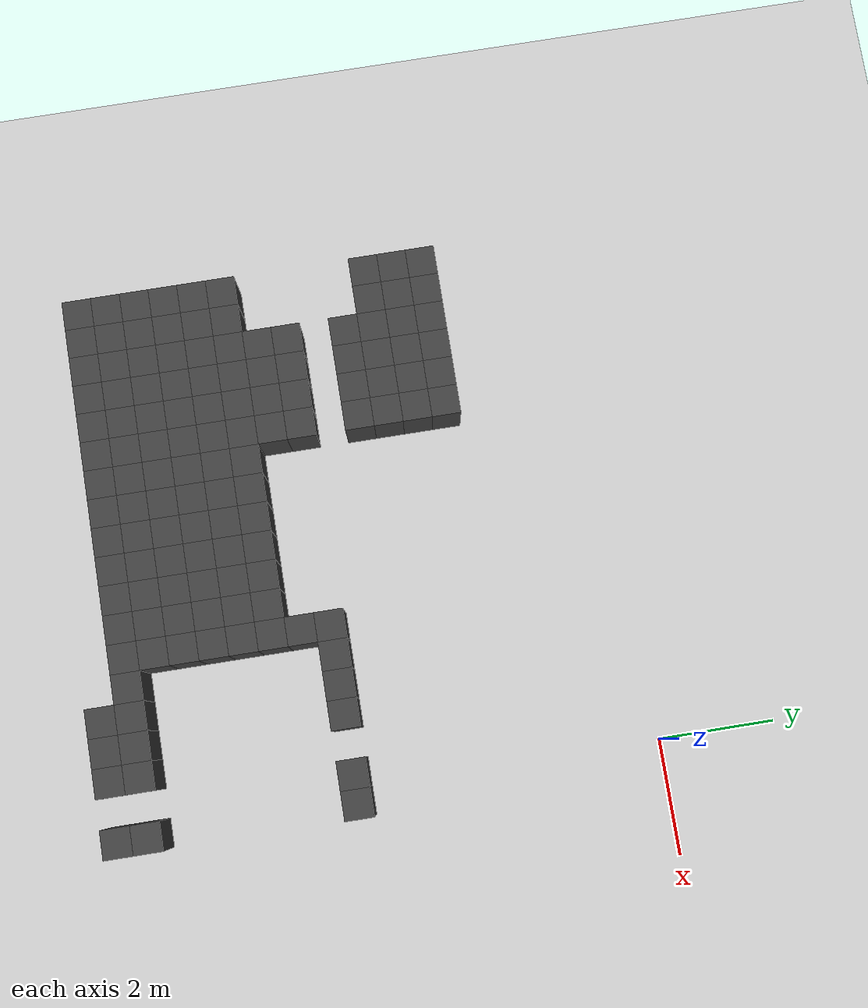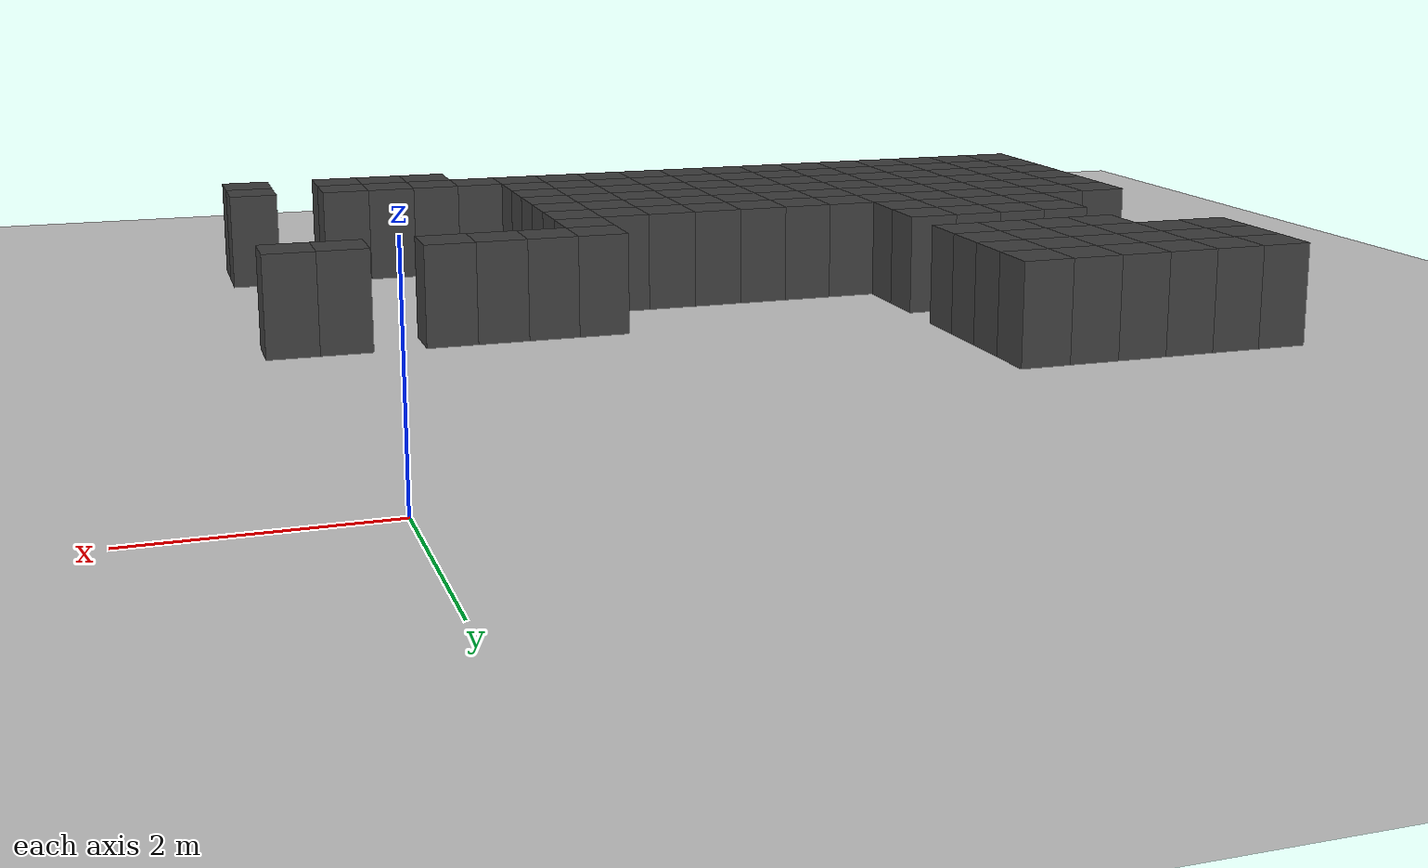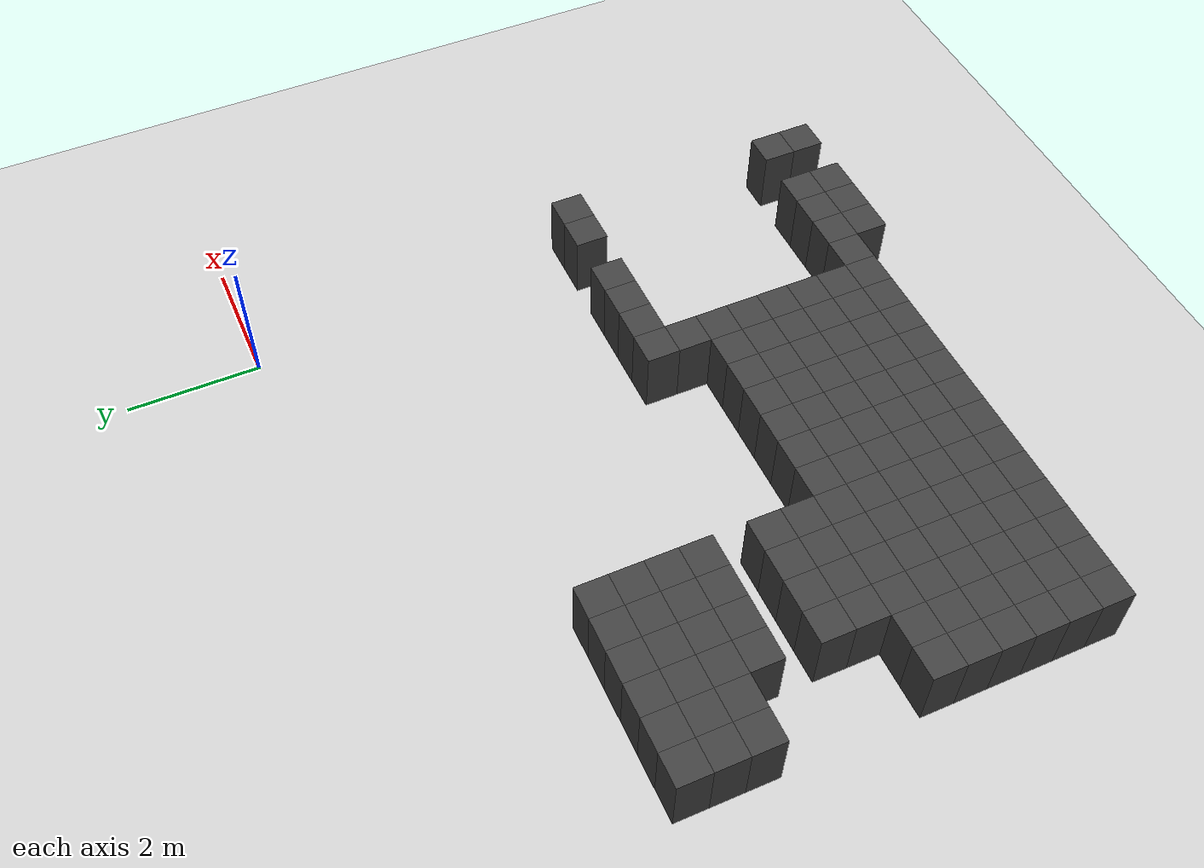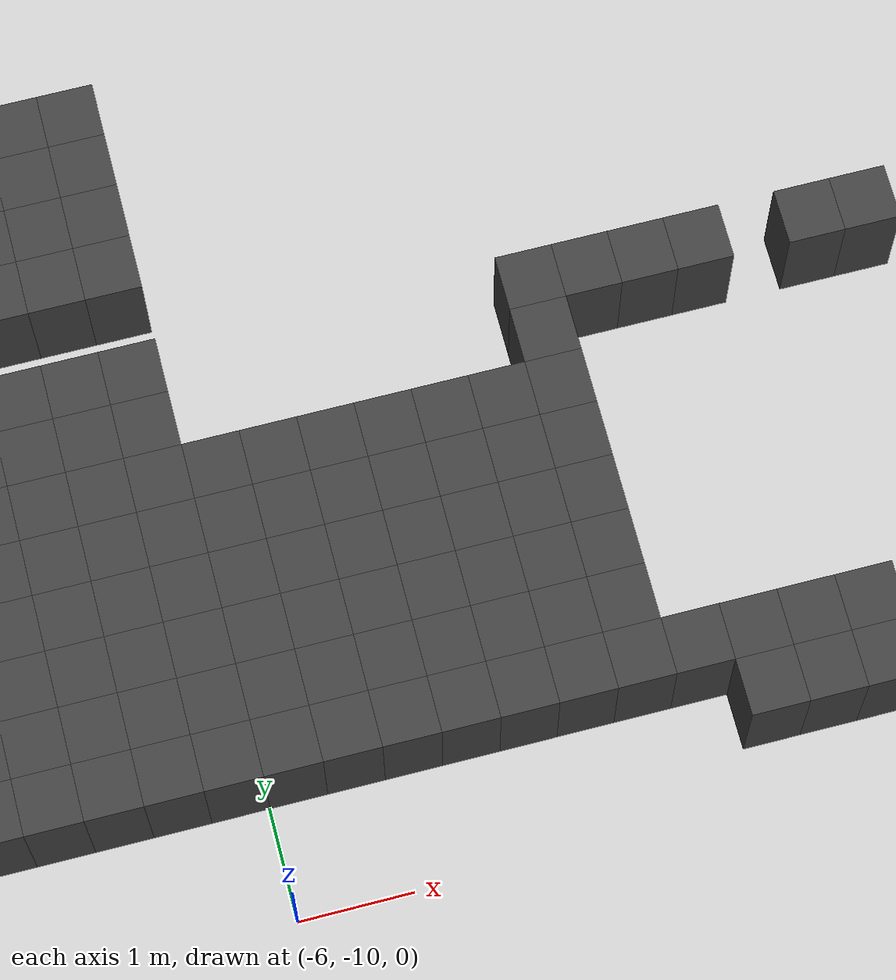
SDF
<sdf version="1.7">
 <world name="map_14802">
  <model name="ground_plane">
   <static>true</static>
   <link name="link">
    <collision name="collision">
     <geometry><plane><normal>0 0 1</normal><size>200 200</size></plane></geometry>
    </collision>
    <visual name="visual">
     <geometry><plane><normal>0 0 1</normal><size>200 200</size></plane></geometry>
     <material><ambient>0.8 0.8 0.8 1</ambient><diffuse>0.8 0.8 0.8 1</diffuse></material>
    </visual>
   </link>
  </model>
  <model name="maze_environment">
   <static>true</static>
   <link name="wall_1045">
    <pose>-8.750 -2.750 0.500 0 0 0</pose>
    <collision name="col"><geometry><box><size>0.5 0.5 1.0</size></box></geometry></collision>
    <visual name="vis">
     <geometry><box><size>0.5 0.5 1.0</size></box></geometry>
     <material><ambient>0.15 0.15 0.15 1</ambient><diffuse>0.25 0.25 0.25 1</diffuse></material>
    </visual>
   </link>
   <link name="wall_1046">
    <pose>-8.250 -2.750 0.500 0 0 0</pose>
    <collision name="col"><geometry><box><size>0.5 0.5 1.0</size></box></geometry></collision>
    <visual name="vis">
     <geometry><box><size>0.5 0.5 1.0</size></box></geometry>
     <material><ambient>0.15 0.15 0.15 1</ambient><diffuse>0.25 0.25 0.25 1</diffuse></material>
    </visual>
   </link>
   <link name="wall_1047">
    <pose>-7.750 -2.750 0.500 0 0 0</pose>
    <collision name="col"><geometry><box><size>0.5 0.5 1.0</size></box></geometry></collision>
    <visual name="vis">
     <geometry><box><size>0.5 0.5 1.0</size></box></geometry>
     <material><ambient>0.15 0.15 0.15 1</ambient><diffuse>0.25 0.25 0.25 1</diffuse></material>
    </visual>
   </link>
   <link name="wall_1048">
    <pose>-7.250 -2.750 0.500 0 0 0</pose>
    <collision name="col"><geometry><box><size>0.5 0.5 1.0</size></box></geometry></collision>
    <visual name="vis">
     <geometry><box><size>0.5 0.5 1.0</size></box></geometry>
     <material><ambient>0.15 0.15 0.15 1</ambient><diffuse>0.25 0.25 0.25 1</diffuse></material>
    </visual>
   </link>
   <link name="wall_1049">
    <pose>-6.750 -2.750 0.500 0 0 0</pose>
    <collision name="col"><geometry><box><size>0.5 0.5 1.0</size></box></geometry></collision>
    <visual name="vis">
     <geometry><box><size>0.5 0.5 1.0</size></box></geometry>
     <material><ambient>0.15 0.15 0.15 1</ambient><diffuse>0.25 0.25 0.25 1</diffuse></material>
    </visual>
   </link>
   <link name="wall_1050">
    <pose>-6.250 -2.750 0.500 0 0 0</pose>
    <collision name="col"><geometry><box><size>0.5 0.5 1.0</size></box></geometry></collision>
    <visual name="vis">
     <geometry><box><size>0.5 0.5 1.0</size></box></geometry>
     <material><ambient>0.15 0.15 0.15 1</ambient><diffuse>0.25 0.25 0.25 1</diffuse></material>
    </visual>
   </link>
   <link name="wall_1073">
    <pose>-8.750 -3.250 0.500 0 0 0</pose>
    <collision name="col"><geometry><box><size>0.5 0.5 1.0</size></box></geometry></collision>
    <visual name="vis">
     <geometry><box><size>0.5 0.5 1.0</size></box></geometry>
     <material><ambient>0.15 0.15 0.15 1</ambient><diffuse>0.25 0.25 0.25 1</diffuse></material>
    </visual>
   </link>
   <link name="wall_1074">
    <pose>-8.250 -3.250 0.500 0 0 0</pose>
    <collision name="col"><geometry><box><size>0.5 0.5 1.0</size></box></geometry></collision>
    <visual name="vis">
     <geometry><box><size>0.5 0.5 1.0</size></box></geometry>
     <material><ambient>0.15 0.15 0.15 1</ambient><diffuse>0.25 0.25 0.25 1</diffuse></material>
    </visual>
   </link>
   <link name="wall_1075">
    <pose>-7.750 -3.250 0.500 0 0 0</pose>
    <collision name="col"><geometry><box><size>0.5 0.5 1.0</size></box></geometry></collision>
    <visual name="vis">
     <geometry><box><size>0.5 0.5 1.0</size></box></geometry>
     <material><ambient>0.15 0.15 0.15 1</ambient><diffuse>0.25 0.25 0.25 1</diffuse></material>
    </visual>
   </link>
   <link name="wall_1076">
    <pose>-7.250 -3.250 0.500 0 0 0</pose>
    <collision name="col"><geometry><box><size>0.5 0.5 1.0</size></box></geometry></collision>
    <visual name="vis">
     <geometry><box><size>0.5 0.5 1.0</size></box></geometry>
     <material><ambient>0.15 0.15 0.15 1</ambient><diffuse>0.25 0.25 0.25 1</diffuse></material>
    </visual>
   </link>
   <link name="wall_1077">
    <pose>-6.750 -3.250 0.500 0 0 0</pose>
    <collision name="col"><geometry><box><size>0.5 0.5 1.0</size></box></geometry></collision>
    <visual name="vis">
     <geometry><box><size>0.5 0.5 1.0</size></box></geometry>
     <material><ambient>0.15 0.15 0.15 1</ambient><diffuse>0.25 0.25 0.25 1</diffuse></material>
    </visual>
   </link>
   <link name="wall_1078">
    <pose>-6.250 -3.250 0.500 0 0 0</pose>
    <collision name="col"><geometry><box><size>0.5 0.5 1.0</size></box></geometry></collision>
    <visual name="vis">
     <geometry><box><size>0.5 0.5 1.0</size></box></geometry>
     <material><ambient>0.15 0.15 0.15 1</ambient><diffuse>0.25 0.25 0.25 1</diffuse></material>
    </visual>
   </link>
   <link name="wall_1097">
    <pose>-8.750 -3.750 0.500 0 0 0</pose>
    <collision name="col"><geometry><box><size>0.5 0.5 1.0</size></box></geometry></collision>
    <visual name="vis">
     <geometry><box><size>0.5 0.5 1.0</size></box></geometry>
     <material><ambient>0.15 0.15 0.15 1</ambient><diffuse>0.25 0.25 0.25 1</diffuse></material>
    </visual>
   </link>
   <link name="wall_1098">
    <pose>-8.250 -3.750 0.500 0 0 0</pose>
    <collision name="col"><geometry><box><size>0.5 0.5 1.0</size></box></geometry></collision>
    <visual name="vis">
     <geometry><box><size>0.5 0.5 1.0</size></box></geometry>
     <material><ambient>0.15 0.15 0.15 1</ambient><diffuse>0.25 0.25 0.25 1</diffuse></material>
    </visual>
   </link>
   <link name="wall_1099">
    <pose>-7.750 -3.750 0.500 0 0 0</pose>
    <collision name="col"><geometry><box><size>0.5 0.5 1.0</size></box></geometry></collision>
    <visual name="vis">
     <geometry><box><size>0.5 0.5 1.0</size></box></geometry>
     <material><ambient>0.15 0.15 0.15 1</ambient><diffuse>0.25 0.25 0.25 1</diffuse></material>
    </visual>
   </link>
   <link name="wall_1100">
    <pose>-7.250 -3.750 0.500 0 0 0</pose>
    <collision name="col"><geometry><box><size>0.5 0.5 1.0</size></box></geometry></collision>
    <visual name="vis">
     <geometry><box><size>0.5 0.5 1.0</size></box></geometry>
     <material><ambient>0.15 0.15 0.15 1</ambient><diffuse>0.25 0.25 0.25 1</diffuse></material>
    </visual>
   </link>
   <link name="wall_1101">
    <pose>-6.750 -3.750 0.500 0 0 0</pose>
    <collision name="col"><geometry><box><size>0.5 0.5 1.0</size></box></geometry></collision>
    <visual name="vis">
     <geometry><box><size>0.5 0.5 1.0</size></box></geometry>
     <material><ambient>0.15 0.15 0.15 1</ambient><diffuse>0.25 0.25 0.25 1</diffuse></material>
    </visual>
   </link>
   <link name="wall_1102">
    <pose>-6.250 -3.750 0.500 0 0 0</pose>
    <collision name="col"><geometry><box><size>0.5 0.5 1.0</size></box></geometry></collision>
    <visual name="vis">
     <geometry><box><size>0.5 0.5 1.0</size></box></geometry>
     <material><ambient>0.15 0.15 0.15 1</ambient><diffuse>0.25 0.25 0.25 1</diffuse></material>
    </visual>
   </link>
   <link name="wall_1123">
    <pose>-7.750 -4.250 0.500 0 0 0</pose>
    <collision name="col"><geometry><box><size>0.5 0.5 1.0</size></box></geometry></collision>
    <visual name="vis">
     <geometry><box><size>0.5 0.5 1.0</size></box></geometry>
     <material><ambient>0.15 0.15 0.15 1</ambient><diffuse>0.25 0.25 0.25 1</diffuse></material>
    </visual>
   </link>
   <link name="wall_1124">
    <pose>-7.250 -4.250 0.500 0 0 0</pose>
    <collision name="col"><geometry><box><size>0.5 0.5 1.0</size></box></geometry></collision>
    <visual name="vis">
     <geometry><box><size>0.5 0.5 1.0</size></box></geometry>
     <material><ambient>0.15 0.15 0.15 1</ambient><diffuse>0.25 0.25 0.25 1</diffuse></material>
    </visual>
   </link>
   <link name="wall_1125">
    <pose>-6.750 -4.250 0.500 0 0 0</pose>
    <collision name="col"><geometry><box><size>0.5 0.5 1.0</size></box></geometry></collision>
    <visual name="vis">
     <geometry><box><size>0.5 0.5 1.0</size></box></geometry>
     <material><ambient>0.15 0.15 0.15 1</ambient><diffuse>0.25 0.25 0.25 1</diffuse></material>
    </visual>
   </link>
   <link name="wall_1126">
    <pose>-6.250 -4.250 0.500 0 0 0</pose>
    <collision name="col"><geometry><box><size>0.5 0.5 1.0</size></box></geometry></collision>
    <visual name="vis">
     <geometry><box><size>0.5 0.5 1.0</size></box></geometry>
     <material><ambient>0.15 0.15 0.15 1</ambient><diffuse>0.25 0.25 0.25 1</diffuse></material>
    </visual>
   </link>
   <link name="wall_1161">
    <pose>-7.750 -5.250 0.500 0 0 0</pose>
    <collision name="col"><geometry><box><size>0.5 0.5 1.0</size></box></geometry></collision>
    <visual name="vis">
     <geometry><box><size>0.5 0.5 1.0</size></box></geometry>
     <material><ambient>0.15 0.15 0.15 1</ambient><diffuse>0.25 0.25 0.25 1</diffuse></material>
    </visual>
   </link>
   <link name="wall_1162">
    <pose>-7.250 -5.250 0.500 0 0 0</pose>
    <collision name="col"><geometry><box><size>0.5 0.5 1.0</size></box></geometry></collision>
    <visual name="vis">
     <geometry><box><size>0.5 0.5 1.0</size></box></geometry>
     <material><ambient>0.15 0.15 0.15 1</ambient><diffuse>0.25 0.25 0.25 1</diffuse></material>
    </visual>
   </link>
   <link name="wall_1163">
    <pose>-6.750 -5.250 0.500 0 0 0</pose>
    <collision name="col"><geometry><box><size>0.5 0.5 1.0</size></box></geometry></collision>
    <visual name="vis">
     <geometry><box><size>0.5 0.5 1.0</size></box></geometry>
     <material><ambient>0.15 0.15 0.15 1</ambient><diffuse>0.25 0.25 0.25 1</diffuse></material>
    </visual>
   </link>
   <link name="wall_1164">
    <pose>-6.250 -5.250 0.500 0 0 0</pose>
    <collision name="col"><geometry><box><size>0.5 0.5 1.0</size></box></geometry></collision>
    <visual name="vis">
     <geometry><box><size>0.5 0.5 1.0</size></box></geometry>
     <material><ambient>0.15 0.15 0.15 1</ambient><diffuse>0.25 0.25 0.25 1</diffuse></material>
    </visual>
   </link>
   <link name="wall_1165">
    <pose>-2.750 -5.250 0.500 0 0 0</pose>
    <collision name="col"><geometry><box><size>0.5 0.5 1.0</size></box></geometry></collision>
    <visual name="vis">
     <geometry><box><size>0.5 0.5 1.0</size></box></geometry>
     <material><ambient>0.15 0.15 0.15 1</ambient><diffuse>0.25 0.25 0.25 1</diffuse></material>
    </visual>
   </link>
   <link name="wall_1166">
    <pose>-2.250 -5.250 0.500 0 0 0</pose>
    <collision name="col"><geometry><box><size>0.5 0.5 1.0</size></box></geometry></collision>
    <visual name="vis">
     <geometry><box><size>0.5 0.5 1.0</size></box></geometry>
     <material><ambient>0.15 0.15 0.15 1</ambient><diffuse>0.25 0.25 0.25 1</diffuse></material>
    </visual>
   </link>
   <link name="wall_1167">
    <pose>-1.750 -5.250 0.500 0 0 0</pose>
    <collision name="col"><geometry><box><size>0.5 0.5 1.0</size></box></geometry></collision>
    <visual name="vis">
     <geometry><box><size>0.5 0.5 1.0</size></box></geometry>
     <material><ambient>0.15 0.15 0.15 1</ambient><diffuse>0.25 0.25 0.25 1</diffuse></material>
    </visual>
   </link>
   <link name="wall_1168">
    <pose>-1.250 -5.250 0.500 0 0 0</pose>
    <collision name="col"><geometry><box><size>0.5 0.5 1.0</size></box></geometry></collision>
    <visual name="vis">
     <geometry><box><size>0.5 0.5 1.0</size></box></geometry>
     <material><ambient>0.15 0.15 0.15 1</ambient><diffuse>0.25 0.25 0.25 1</diffuse></material>
    </visual>
   </link>
   <link name="wall_1169">
    <pose>-0.250 -5.250 0.500 0 0 0</pose>
    <collision name="col"><geometry><box><size>0.5 0.5 1.0</size></box></geometry></collision>
    <visual name="vis">
     <geometry><box><size>0.5 0.5 1.0</size></box></geometry>
     <material><ambient>0.15 0.15 0.15 1</ambient><diffuse>0.25 0.25 0.25 1</diffuse></material>
    </visual>
   </link>
   <link name="wall_1170">
    <pose>0.250 -5.250 0.500 0 0 0</pose>
    <collision name="col"><geometry><box><size>0.5 0.5 1.0</size></box></geometry></collision>
    <visual name="vis">
     <geometry><box><size>0.5 0.5 1.0</size></box></geometry>
     <material><ambient>0.15 0.15 0.15 1</ambient><diffuse>0.25 0.25 0.25 1</diffuse></material>
    </visual>
   </link>
   <link name="wall_1189">
    <pose>-7.750 -5.750 0.500 0 0 0</pose>
    <collision name="col"><geometry><box><size>0.5 0.5 1.0</size></box></geometry></collision>
    <visual name="vis">
     <geometry><box><size>0.5 0.5 1.0</size></box></geometry>
     <material><ambient>0.15 0.15 0.15 1</ambient><diffuse>0.25 0.25 0.25 1</diffuse></material>
    </visual>
   </link>
   <link name="wall_1190">
    <pose>-7.250 -5.750 0.500 0 0 0</pose>
    <collision name="col"><geometry><box><size>0.5 0.5 1.0</size></box></geometry></collision>
    <visual name="vis">
     <geometry><box><size>0.5 0.5 1.0</size></box></geometry>
     <material><ambient>0.15 0.15 0.15 1</ambient><diffuse>0.25 0.25 0.25 1</diffuse></material>
    </visual>
   </link>
   <link name="wall_1191">
    <pose>-6.750 -5.750 0.500 0 0 0</pose>
    <collision name="col"><geometry><box><size>0.5 0.5 1.0</size></box></geometry></collision>
    <visual name="vis">
     <geometry><box><size>0.5 0.5 1.0</size></box></geometry>
     <material><ambient>0.15 0.15 0.15 1</ambient><diffuse>0.25 0.25 0.25 1</diffuse></material>
    </visual>
   </link>
   <link name="wall_1192">
    <pose>-6.250 -5.750 0.500 0 0 0</pose>
    <collision name="col"><geometry><box><size>0.5 0.5 1.0</size></box></geometry></collision>
    <visual name="vis">
     <geometry><box><size>0.5 0.5 1.0</size></box></geometry>
     <material><ambient>0.15 0.15 0.15 1</ambient><diffuse>0.25 0.25 0.25 1</diffuse></material>
    </visual>
   </link>
   <link name="wall_1193">
    <pose>-2.750 -5.750 0.500 0 0 0</pose>
    <collision name="col"><geometry><box><size>0.5 0.5 1.0</size></box></geometry></collision>
    <visual name="vis">
     <geometry><box><size>0.5 0.5 1.0</size></box></geometry>
     <material><ambient>0.15 0.15 0.15 1</ambient><diffuse>0.25 0.25 0.25 1</diffuse></material>
    </visual>
   </link>
   <link name="wall_1214">
    <pose>-8.750 -6.250 0.500 0 0 0</pose>
    <collision name="col"><geometry><box><size>0.5 0.5 1.0</size></box></geometry></collision>
    <visual name="vis">
     <geometry><box><size>0.5 0.5 1.0</size></box></geometry>
     <material><ambient>0.15 0.15 0.15 1</ambient><diffuse>0.25 0.25 0.25 1</diffuse></material>
    </visual>
   </link>
   <link name="wall_1215">
    <pose>-8.250 -6.250 0.500 0 0 0</pose>
    <collision name="col"><geometry><box><size>0.5 0.5 1.0</size></box></geometry></collision>
    <visual name="vis">
     <geometry><box><size>0.5 0.5 1.0</size></box></geometry>
     <material><ambient>0.15 0.15 0.15 1</ambient><diffuse>0.25 0.25 0.25 1</diffuse></material>
    </visual>
   </link>
   <link name="wall_1216">
    <pose>-7.750 -6.250 0.500 0 0 0</pose>
    <collision name="col"><geometry><box><size>0.5 0.5 1.0</size></box></geometry></collision>
    <visual name="vis">
     <geometry><box><size>0.5 0.5 1.0</size></box></geometry>
     <material><ambient>0.15 0.15 0.15 1</ambient><diffuse>0.25 0.25 0.25 1</diffuse></material>
    </visual>
   </link>
   <link name="wall_1217">
    <pose>-7.250 -6.250 0.500 0 0 0</pose>
    <collision name="col"><geometry><box><size>0.5 0.5 1.0</size></box></geometry></collision>
    <visual name="vis">
     <geometry><box><size>0.5 0.5 1.0</size></box></geometry>
     <material><ambient>0.15 0.15 0.15 1</ambient><diffuse>0.25 0.25 0.25 1</diffuse></material>
    </visual>
   </link>
   <link name="wall_1218">
    <pose>-6.750 -6.250 0.500 0 0 0</pose>
    <collision name="col"><geometry><box><size>0.5 0.5 1.0</size></box></geometry></collision>
    <visual name="vis">
     <geometry><box><size>0.5 0.5 1.0</size></box></geometry>
     <material><ambient>0.15 0.15 0.15 1</ambient><diffuse>0.25 0.25 0.25 1</diffuse></material>
    </visual>
   </link>
   <link name="wall_1219">
    <pose>-6.250 -6.250 0.500 0 0 0</pose>
    <collision name="col"><geometry><box><size>0.5 0.5 1.0</size></box></geometry></collision>
    <visual name="vis">
     <geometry><box><size>0.5 0.5 1.0</size></box></geometry>
     <material><ambient>0.15 0.15 0.15 1</ambient><diffuse>0.25 0.25 0.25 1</diffuse></material>
    </visual>
   </link>
   <link name="wall_1220">
    <pose>-5.750 -6.250 0.500 0 0 0</pose>
    <collision name="col"><geometry><box><size>0.5 0.5 1.0</size></box></geometry></collision>
    <visual name="vis">
     <geometry><box><size>0.5 0.5 1.0</size></box></geometry>
     <material><ambient>0.15 0.15 0.15 1</ambient><diffuse>0.25 0.25 0.25 1</diffuse></material>
    </visual>
   </link>
   <link name="wall_1221">
    <pose>-5.250 -6.250 0.500 0 0 0</pose>
    <collision name="col"><geometry><box><size>0.5 0.5 1.0</size></box></geometry></collision>
    <visual name="vis">
     <geometry><box><size>0.5 0.5 1.0</size></box></geometry>
     <material><ambient>0.15 0.15 0.15 1</ambient><diffuse>0.25 0.25 0.25 1</diffuse></material>
    </visual>
   </link>
   <link name="wall_1222">
    <pose>-4.750 -6.250 0.500 0 0 0</pose>
    <collision name="col"><geometry><box><size>0.5 0.5 1.0</size></box></geometry></collision>
    <visual name="vis">
     <geometry><box><size>0.5 0.5 1.0</size></box></geometry>
     <material><ambient>0.15 0.15 0.15 1</ambient><diffuse>0.25 0.25 0.25 1</diffuse></material>
    </visual>
   </link>
   <link name="wall_1223">
    <pose>-4.250 -6.250 0.500 0 0 0</pose>
    <collision name="col"><geometry><box><size>0.5 0.5 1.0</size></box></geometry></collision>
    <visual name="vis">
     <geometry><box><size>0.5 0.5 1.0</size></box></geometry>
     <material><ambient>0.15 0.15 0.15 1</ambient><diffuse>0.25 0.25 0.25 1</diffuse></material>
    </visual>
   </link>
   <link name="wall_1224">
    <pose>-3.750 -6.250 0.500 0 0 0</pose>
    <collision name="col"><geometry><box><size>0.5 0.5 1.0</size></box></geometry></collision>
    <visual name="vis">
     <geometry><box><size>0.5 0.5 1.0</size></box></geometry>
     <material><ambient>0.15 0.15 0.15 1</ambient><diffuse>0.25 0.25 0.25 1</diffuse></material>
    </visual>
   </link>
   <link name="wall_1225">
    <pose>-3.250 -6.250 0.500 0 0 0</pose>
    <collision name="col"><geometry><box><size>0.5 0.5 1.0</size></box></geometry></collision>
    <visual name="vis">
     <geometry><box><size>0.5 0.5 1.0</size></box></geometry>
     <material><ambient>0.15 0.15 0.15 1</ambient><diffuse>0.25 0.25 0.25 1</diffuse></material>
    </visual>
   </link>
   <link name="wall_1226">
    <pose>-2.750 -6.250 0.500 0 0 0</pose>
    <collision name="col"><geometry><box><size>0.5 0.5 1.0</size></box></geometry></collision>
    <visual name="vis">
     <geometry><box><size>0.5 0.5 1.0</size></box></geometry>
     <material><ambient>0.15 0.15 0.15 1</ambient><diffuse>0.25 0.25 0.25 1</diffuse></material>
    </visual>
   </link>
   <link name="wall_1247">
    <pose>-8.750 -6.750 0.500 0 0 0</pose>
    <collision name="col"><geometry><box><size>0.5 0.5 1.0</size></box></geometry></collision>
    <visual name="vis">
     <geometry><box><size>0.5 0.5 1.0</size></box></geometry>
     <material><ambient>0.15 0.15 0.15 1</ambient><diffuse>0.25 0.25 0.25 1</diffuse></material>
    </visual>
   </link>
   <link name="wall_1248">
    <pose>-8.250 -6.750 0.500 0 0 0</pose>
    <collision name="col"><geometry><box><size>0.5 0.5 1.0</size></box></geometry></collision>
    <visual name="vis">
     <geometry><box><size>0.5 0.5 1.0</size></box></geometry>
     <material><ambient>0.15 0.15 0.15 1</ambient><diffuse>0.25 0.25 0.25 1</diffuse></material>
    </visual>
   </link>
   <link name="wall_1249">
    <pose>-7.750 -6.750 0.500 0 0 0</pose>
    <collision name="col"><geometry><box><size>0.5 0.5 1.0</size></box></geometry></collision>
    <visual name="vis">
     <geometry><box><size>0.5 0.5 1.0</size></box></geometry>
     <material><ambient>0.15 0.15 0.15 1</ambient><diffuse>0.25 0.25 0.25 1</diffuse></material>
    </visual>
   </link>
   <link name="wall_1250">
    <pose>-7.250 -6.750 0.500 0 0 0</pose>
    <collision name="col"><geometry><box><size>0.5 0.5 1.0</size></box></geometry></collision>
    <visual name="vis">
     <geometry><box><size>0.5 0.5 1.0</size></box></geometry>
     <material><ambient>0.15 0.15 0.15 1</ambient><diffuse>0.25 0.25 0.25 1</diffuse></material>
    </visual>
   </link>
   <link name="wall_1251">
    <pose>-6.750 -6.750 0.500 0 0 0</pose>
    <collision name="col"><geometry><box><size>0.5 0.5 1.0</size></box></geometry></collision>
    <visual name="vis">
     <geometry><box><size>0.5 0.5 1.0</size></box></geometry>
     <material><ambient>0.15 0.15 0.15 1</ambient><diffuse>0.25 0.25 0.25 1</diffuse></material>
    </visual>
   </link>
   <link name="wall_1252">
    <pose>-6.250 -6.750 0.500 0 0 0</pose>
    <collision name="col"><geometry><box><size>0.5 0.5 1.0</size></box></geometry></collision>
    <visual name="vis">
     <geometry><box><size>0.5 0.5 1.0</size></box></geometry>
     <material><ambient>0.15 0.15 0.15 1</ambient><diffuse>0.25 0.25 0.25 1</diffuse></material>
    </visual>
   </link>
   <link name="wall_1253">
    <pose>-5.750 -6.750 0.500 0 0 0</pose>
    <collision name="col"><geometry><box><size>0.5 0.5 1.0</size></box></geometry></collision>
    <visual name="vis">
     <geometry><box><size>0.5 0.5 1.0</size></box></geometry>
     <material><ambient>0.15 0.15 0.15 1</ambient><diffuse>0.25 0.25 0.25 1</diffuse></material>
    </visual>
   </link>
   <link name="wall_1254">
    <pose>-5.250 -6.750 0.500 0 0 0</pose>
    <collision name="col"><geometry><box><size>0.5 0.5 1.0</size></box></geometry></collision>
    <visual name="vis">
     <geometry><box><size>0.5 0.5 1.0</size></box></geometry>
     <material><ambient>0.15 0.15 0.15 1</ambient><diffuse>0.25 0.25 0.25 1</diffuse></material>
    </visual>
   </link>
   <link name="wall_1255">
    <pose>-4.750 -6.750 0.500 0 0 0</pose>
    <collision name="col"><geometry><box><size>0.5 0.5 1.0</size></box></geometry></collision>
    <visual name="vis">
     <geometry><box><size>0.5 0.5 1.0</size></box></geometry>
     <material><ambient>0.15 0.15 0.15 1</ambient><diffuse>0.25 0.25 0.25 1</diffuse></material>
    </visual>
   </link>
   <link name="wall_1256">
    <pose>-4.250 -6.750 0.500 0 0 0</pose>
    <collision name="col"><geometry><box><size>0.5 0.5 1.0</size></box></geometry></collision>
    <visual name="vis">
     <geometry><box><size>0.5 0.5 1.0</size></box></geometry>
     <material><ambient>0.15 0.15 0.15 1</ambient><diffuse>0.25 0.25 0.25 1</diffuse></material>
    </visual>
   </link>
   <link name="wall_1257">
    <pose>-3.750 -6.750 0.500 0 0 0</pose>
    <collision name="col"><geometry><box><size>0.5 0.5 1.0</size></box></geometry></collision>
    <visual name="vis">
     <geometry><box><size>0.5 0.5 1.0</size></box></geometry>
     <material><ambient>0.15 0.15 0.15 1</ambient><diffuse>0.25 0.25 0.25 1</diffuse></material>
    </visual>
   </link>
   <link name="wall_1258">
    <pose>-3.250 -6.750 0.500 0 0 0</pose>
    <collision name="col"><geometry><box><size>0.5 0.5 1.0</size></box></geometry></collision>
    <visual name="vis">
     <geometry><box><size>0.5 0.5 1.0</size></box></geometry>
     <material><ambient>0.15 0.15 0.15 1</ambient><diffuse>0.25 0.25 0.25 1</diffuse></material>
    </visual>
   </link>
   <link name="wall_1259">
    <pose>-2.750 -6.750 0.500 0 0 0</pose>
    <collision name="col"><geometry><box><size>0.5 0.5 1.0</size></box></geometry></collision>
    <visual name="vis">
     <geometry><box><size>0.5 0.5 1.0</size></box></geometry>
     <material><ambient>0.15 0.15 0.15 1</ambient><diffuse>0.25 0.25 0.25 1</diffuse></material>
    </visual>
   </link>
   <link name="wall_1282">
    <pose>-8.750 -7.250 0.500 0 0 0</pose>
    <collision name="col"><geometry><box><size>0.5 0.5 1.0</size></box></geometry></collision>
    <visual name="vis">
     <geometry><box><size>0.5 0.5 1.0</size></box></geometry>
     <material><ambient>0.15 0.15 0.15 1</ambient><diffuse>0.25 0.25 0.25 1</diffuse></material>
    </visual>
   </link>
   <link name="wall_1283">
    <pose>-8.250 -7.250 0.500 0 0 0</pose>
    <collision name="col"><geometry><box><size>0.5 0.5 1.0</size></box></geometry></collision>
    <visual name="vis">
     <geometry><box><size>0.5 0.5 1.0</size></box></geometry>
     <material><ambient>0.15 0.15 0.15 1</ambient><diffuse>0.25 0.25 0.25 1</diffuse></material>
    </visual>
   </link>
   <link name="wall_1284">
    <pose>-7.750 -7.250 0.500 0 0 0</pose>
    <collision name="col"><geometry><box><size>0.5 0.5 1.0</size></box></geometry></collision>
    <visual name="vis">
     <geometry><box><size>0.5 0.5 1.0</size></box></geometry>
     <material><ambient>0.15 0.15 0.15 1</ambient><diffuse>0.25 0.25 0.25 1</diffuse></material>
    </visual>
   </link>
   <link name="wall_1285">
    <pose>-7.250 -7.250 0.500 0 0 0</pose>
    <collision name="col"><geometry><box><size>0.5 0.5 1.0</size></box></geometry></collision>
    <visual name="vis">
     <geometry><box><size>0.5 0.5 1.0</size></box></geometry>
     <material><ambient>0.15 0.15 0.15 1</ambient><diffuse>0.25 0.25 0.25 1</diffuse></material>
    </visual>
   </link>
   <link name="wall_1286">
    <pose>-6.750 -7.250 0.500 0 0 0</pose>
    <collision name="col"><geometry><box><size>0.5 0.5 1.0</size></box></geometry></collision>
    <visual name="vis">
     <geometry><box><size>0.5 0.5 1.0</size></box></geometry>
     <material><ambient>0.15 0.15 0.15 1</ambient><diffuse>0.25 0.25 0.25 1</diffuse></material>
    </visual>
   </link>
   <link name="wall_1287">
    <pose>-6.250 -7.250 0.500 0 0 0</pose>
    <collision name="col"><geometry><box><size>0.5 0.5 1.0</size></box></geometry></collision>
    <visual name="vis">
     <geometry><box><size>0.5 0.5 1.0</size></box></geometry>
     <material><ambient>0.15 0.15 0.15 1</ambient><diffuse>0.25 0.25 0.25 1</diffuse></material>
    </visual>
   </link>
   <link name="wall_1288">
    <pose>-5.750 -7.250 0.500 0 0 0</pose>
    <collision name="col"><geometry><box><size>0.5 0.5 1.0</size></box></geometry></collision>
    <visual name="vis">
     <geometry><box><size>0.5 0.5 1.0</size></box></geometry>
     <material><ambient>0.15 0.15 0.15 1</ambient><diffuse>0.25 0.25 0.25 1</diffuse></material>
    </visual>
   </link>
   <link name="wall_1289">
    <pose>-5.250 -7.250 0.500 0 0 0</pose>
    <collision name="col"><geometry><box><size>0.5 0.5 1.0</size></box></geometry></collision>
    <visual name="vis">
     <geometry><box><size>0.5 0.5 1.0</size></box></geometry>
     <material><ambient>0.15 0.15 0.15 1</ambient><diffuse>0.25 0.25 0.25 1</diffuse></material>
    </visual>
   </link>
   <link name="wall_1290">
    <pose>-4.750 -7.250 0.500 0 0 0</pose>
    <collision name="col"><geometry><box><size>0.5 0.5 1.0</size></box></geometry></collision>
    <visual name="vis">
     <geometry><box><size>0.5 0.5 1.0</size></box></geometry>
     <material><ambient>0.15 0.15 0.15 1</ambient><diffuse>0.25 0.25 0.25 1</diffuse></material>
    </visual>
   </link>
   <link name="wall_1291">
    <pose>-4.250 -7.250 0.500 0 0 0</pose>
    <collision name="col"><geometry><box><size>0.5 0.5 1.0</size></box></geometry></collision>
    <visual name="vis">
     <geometry><box><size>0.5 0.5 1.0</size></box></geometry>
     <material><ambient>0.15 0.15 0.15 1</ambient><diffuse>0.25 0.25 0.25 1</diffuse></material>
    </visual>
   </link>
   <link name="wall_1292">
    <pose>-3.750 -7.250 0.500 0 0 0</pose>
    <collision name="col"><geometry><box><size>0.5 0.5 1.0</size></box></geometry></collision>
    <visual name="vis">
     <geometry><box><size>0.5 0.5 1.0</size></box></geometry>
     <material><ambient>0.15 0.15 0.15 1</ambient><diffuse>0.25 0.25 0.25 1</diffuse></material>
    </visual>
   </link>
   <link name="wall_1293">
    <pose>-3.250 -7.250 0.500 0 0 0</pose>
    <collision name="col"><geometry><box><size>0.5 0.5 1.0</size></box></geometry></collision>
    <visual name="vis">
     <geometry><box><size>0.5 0.5 1.0</size></box></geometry>
     <material><ambient>0.15 0.15 0.15 1</ambient><diffuse>0.25 0.25 0.25 1</diffuse></material>
    </visual>
   </link>
   <link name="wall_1294">
    <pose>-2.750 -7.250 0.500 0 0 0</pose>
    <collision name="col"><geometry><box><size>0.5 0.5 1.0</size></box></geometry></collision>
    <visual name="vis">
     <geometry><box><size>0.5 0.5 1.0</size></box></geometry>
     <material><ambient>0.15 0.15 0.15 1</ambient><diffuse>0.25 0.25 0.25 1</diffuse></material>
    </visual>
   </link>
   <link name="wall_1317">
    <pose>-8.750 -7.750 0.500 0 0 0</pose>
    <collision name="col"><geometry><box><size>0.5 0.5 1.0</size></box></geometry></collision>
    <visual name="vis">
     <geometry><box><size>0.5 0.5 1.0</size></box></geometry>
     <material><ambient>0.15 0.15 0.15 1</ambient><diffuse>0.25 0.25 0.25 1</diffuse></material>
    </visual>
   </link>
   <link name="wall_1318">
    <pose>-8.250 -7.750 0.500 0 0 0</pose>
    <collision name="col"><geometry><box><size>0.5 0.5 1.0</size></box></geometry></collision>
    <visual name="vis">
     <geometry><box><size>0.5 0.5 1.0</size></box></geometry>
     <material><ambient>0.15 0.15 0.15 1</ambient><diffuse>0.25 0.25 0.25 1</diffuse></material>
    </visual>
   </link>
   <link name="wall_1319">
    <pose>-7.750 -7.750 0.500 0 0 0</pose>
    <collision name="col"><geometry><box><size>0.5 0.5 1.0</size></box></geometry></collision>
    <visual name="vis">
     <geometry><box><size>0.5 0.5 1.0</size></box></geometry>
     <material><ambient>0.15 0.15 0.15 1</ambient><diffuse>0.25 0.25 0.25 1</diffuse></material>
    </visual>
   </link>
   <link name="wall_1320">
    <pose>-7.250 -7.750 0.500 0 0 0</pose>
    <collision name="col"><geometry><box><size>0.5 0.5 1.0</size></box></geometry></collision>
    <visual name="vis">
     <geometry><box><size>0.5 0.5 1.0</size></box></geometry>
     <material><ambient>0.15 0.15 0.15 1</ambient><diffuse>0.25 0.25 0.25 1</diffuse></material>
    </visual>
   </link>
   <link name="wall_1321">
    <pose>-6.750 -7.750 0.500 0 0 0</pose>
    <collision name="col"><geometry><box><size>0.5 0.5 1.0</size></box></geometry></collision>
    <visual name="vis">
     <geometry><box><size>0.5 0.5 1.0</size></box></geometry>
     <material><ambient>0.15 0.15 0.15 1</ambient><diffuse>0.25 0.25 0.25 1</diffuse></material>
    </visual>
   </link>
   <link name="wall_1322">
    <pose>-6.250 -7.750 0.500 0 0 0</pose>
    <collision name="col"><geometry><box><size>0.5 0.5 1.0</size></box></geometry></collision>
    <visual name="vis">
     <geometry><box><size>0.5 0.5 1.0</size></box></geometry>
     <material><ambient>0.15 0.15 0.15 1</ambient><diffuse>0.25 0.25 0.25 1</diffuse></material>
    </visual>
   </link>
   <link name="wall_1323">
    <pose>-5.750 -7.750 0.500 0 0 0</pose>
    <collision name="col"><geometry><box><size>0.5 0.5 1.0</size></box></geometry></collision>
    <visual name="vis">
     <geometry><box><size>0.5 0.5 1.0</size></box></geometry>
     <material><ambient>0.15 0.15 0.15 1</ambient><diffuse>0.25 0.25 0.25 1</diffuse></material>
    </visual>
   </link>
   <link name="wall_1324">
    <pose>-5.250 -7.750 0.500 0 0 0</pose>
    <collision name="col"><geometry><box><size>0.5 0.5 1.0</size></box></geometry></collision>
    <visual name="vis">
     <geometry><box><size>0.5 0.5 1.0</size></box></geometry>
     <material><ambient>0.15 0.15 0.15 1</ambient><diffuse>0.25 0.25 0.25 1</diffuse></material>
    </visual>
   </link>
   <link name="wall_1325">
    <pose>-4.750 -7.750 0.500 0 0 0</pose>
    <collision name="col"><geometry><box><size>0.5 0.5 1.0</size></box></geometry></collision>
    <visual name="vis">
     <geometry><box><size>0.5 0.5 1.0</size></box></geometry>
     <material><ambient>0.15 0.15 0.15 1</ambient><diffuse>0.25 0.25 0.25 1</diffuse></material>
    </visual>
   </link>
   <link name="wall_1326">
    <pose>-4.250 -7.750 0.500 0 0 0</pose>
    <collision name="col"><geometry><box><size>0.5 0.5 1.0</size></box></geometry></collision>
    <visual name="vis">
     <geometry><box><size>0.5 0.5 1.0</size></box></geometry>
     <material><ambient>0.15 0.15 0.15 1</ambient><diffuse>0.25 0.25 0.25 1</diffuse></material>
    </visual>
   </link>
   <link name="wall_1327">
    <pose>-3.750 -7.750 0.500 0 0 0</pose>
    <collision name="col"><geometry><box><size>0.5 0.5 1.0</size></box></geometry></collision>
    <visual name="vis">
     <geometry><box><size>0.5 0.5 1.0</size></box></geometry>
     <material><ambient>0.15 0.15 0.15 1</ambient><diffuse>0.25 0.25 0.25 1</diffuse></material>
    </visual>
   </link>
   <link name="wall_1328">
    <pose>-3.250 -7.750 0.500 0 0 0</pose>
    <collision name="col"><geometry><box><size>0.5 0.5 1.0</size></box></geometry></collision>
    <visual name="vis">
     <geometry><box><size>0.5 0.5 1.0</size></box></geometry>
     <material><ambient>0.15 0.15 0.15 1</ambient><diffuse>0.25 0.25 0.25 1</diffuse></material>
    </visual>
   </link>
   <link name="wall_1329">
    <pose>-2.750 -7.750 0.500 0 0 0</pose>
    <collision name="col"><geometry><box><size>0.5 0.5 1.0</size></box></geometry></collision>
    <visual name="vis">
     <geometry><box><size>0.5 0.5 1.0</size></box></geometry>
     <material><ambient>0.15 0.15 0.15 1</ambient><diffuse>0.25 0.25 0.25 1</diffuse></material>
    </visual>
   </link>
   <link name="wall_1352">
    <pose>-8.750 -8.250 0.500 0 0 0</pose>
    <collision name="col"><geometry><box><size>0.5 0.5 1.0</size></box></geometry></collision>
    <visual name="vis">
     <geometry><box><size>0.5 0.5 1.0</size></box></geometry>
     <material><ambient>0.15 0.15 0.15 1</ambient><diffuse>0.25 0.25 0.25 1</diffuse></material>
    </visual>
   </link>
   <link name="wall_1353">
    <pose>-8.250 -8.250 0.500 0 0 0</pose>
    <collision name="col"><geometry><box><size>0.5 0.5 1.0</size></box></geometry></collision>
    <visual name="vis">
     <geometry><box><size>0.5 0.5 1.0</size></box></geometry>
     <material><ambient>0.15 0.15 0.15 1</ambient><diffuse>0.25 0.25 0.25 1</diffuse></material>
    </visual>
   </link>
   <link name="wall_1354">
    <pose>-7.750 -8.250 0.500 0 0 0</pose>
    <collision name="col"><geometry><box><size>0.5 0.5 1.0</size></box></geometry></collision>
    <visual name="vis">
     <geometry><box><size>0.5 0.5 1.0</size></box></geometry>
     <material><ambient>0.15 0.15 0.15 1</ambient><diffuse>0.25 0.25 0.25 1</diffuse></material>
    </visual>
   </link>
   <link name="wall_1355">
    <pose>-7.250 -8.250 0.500 0 0 0</pose>
    <collision name="col"><geometry><box><size>0.5 0.5 1.0</size></box></geometry></collision>
    <visual name="vis">
     <geometry><box><size>0.5 0.5 1.0</size></box></geometry>
     <material><ambient>0.15 0.15 0.15 1</ambient><diffuse>0.25 0.25 0.25 1</diffuse></material>
    </visual>
   </link>
   <link name="wall_1356">
    <pose>-6.750 -8.250 0.500 0 0 0</pose>
    <collision name="col"><geometry><box><size>0.5 0.5 1.0</size></box></geometry></collision>
    <visual name="vis">
     <geometry><box><size>0.5 0.5 1.0</size></box></geometry>
     <material><ambient>0.15 0.15 0.15 1</ambient><diffuse>0.25 0.25 0.25 1</diffuse></material>
    </visual>
   </link>
   <link name="wall_1357">
    <pose>-6.250 -8.250 0.500 0 0 0</pose>
    <collision name="col"><geometry><box><size>0.5 0.5 1.0</size></box></geometry></collision>
    <visual name="vis">
     <geometry><box><size>0.5 0.5 1.0</size></box></geometry>
     <material><ambient>0.15 0.15 0.15 1</ambient><diffuse>0.25 0.25 0.25 1</diffuse></material>
    </visual>
   </link>
   <link name="wall_1358">
    <pose>-5.750 -8.250 0.500 0 0 0</pose>
    <collision name="col"><geometry><box><size>0.5 0.5 1.0</size></box></geometry></collision>
    <visual name="vis">
     <geometry><box><size>0.5 0.5 1.0</size></box></geometry>
     <material><ambient>0.15 0.15 0.15 1</ambient><diffuse>0.25 0.25 0.25 1</diffuse></material>
    </visual>
   </link>
   <link name="wall_1359">
    <pose>-5.250 -8.250 0.500 0 0 0</pose>
    <collision name="col"><geometry><box><size>0.5 0.5 1.0</size></box></geometry></collision>
    <visual name="vis">
     <geometry><box><size>0.5 0.5 1.0</size></box></geometry>
     <material><ambient>0.15 0.15 0.15 1</ambient><diffuse>0.25 0.25 0.25 1</diffuse></material>
    </visual>
   </link>
   <link name="wall_1360">
    <pose>-4.750 -8.250 0.500 0 0 0</pose>
    <collision name="col"><geometry><box><size>0.5 0.5 1.0</size></box></geometry></collision>
    <visual name="vis">
     <geometry><box><size>0.5 0.5 1.0</size></box></geometry>
     <material><ambient>0.15 0.15 0.15 1</ambient><diffuse>0.25 0.25 0.25 1</diffuse></material>
    </visual>
   </link>
   <link name="wall_1361">
    <pose>-4.250 -8.250 0.500 0 0 0</pose>
    <collision name="col"><geometry><box><size>0.5 0.5 1.0</size></box></geometry></collision>
    <visual name="vis">
     <geometry><box><size>0.5 0.5 1.0</size></box></geometry>
     <material><ambient>0.15 0.15 0.15 1</ambient><diffuse>0.25 0.25 0.25 1</diffuse></material>
    </visual>
   </link>
   <link name="wall_1362">
    <pose>-3.750 -8.250 0.500 0 0 0</pose>
    <collision name="col"><geometry><box><size>0.5 0.5 1.0</size></box></geometry></collision>
    <visual name="vis">
     <geometry><box><size>0.5 0.5 1.0</size></box></geometry>
     <material><ambient>0.15 0.15 0.15 1</ambient><diffuse>0.25 0.25 0.25 1</diffuse></material>
    </visual>
   </link>
   <link name="wall_1363">
    <pose>-3.250 -8.250 0.500 0 0 0</pose>
    <collision name="col"><geometry><box><size>0.5 0.5 1.0</size></box></geometry></collision>
    <visual name="vis">
     <geometry><box><size>0.5 0.5 1.0</size></box></geometry>
     <material><ambient>0.15 0.15 0.15 1</ambient><diffuse>0.25 0.25 0.25 1</diffuse></material>
    </visual>
   </link>
   <link name="wall_1364">
    <pose>-2.750 -8.250 0.500 0 0 0</pose>
    <collision name="col"><geometry><box><size>0.5 0.5 1.0</size></box></geometry></collision>
    <visual name="vis">
     <geometry><box><size>0.5 0.5 1.0</size></box></geometry>
     <material><ambient>0.15 0.15 0.15 1</ambient><diffuse>0.25 0.25 0.25 1</diffuse></material>
    </visual>
   </link>
   <link name="wall_1393">
    <pose>-8.750 -8.750 0.500 0 0 0</pose>
    <collision name="col"><geometry><box><size>0.5 0.5 1.0</size></box></geometry></collision>
    <visual name="vis">
     <geometry><box><size>0.5 0.5 1.0</size></box></geometry>
     <material><ambient>0.15 0.15 0.15 1</ambient><diffuse>0.25 0.25 0.25 1</diffuse></material>
    </visual>
   </link>
   <link name="wall_1394">
    <pose>-8.250 -8.750 0.500 0 0 0</pose>
    <collision name="col"><geometry><box><size>0.5 0.5 1.0</size></box></geometry></collision>
    <visual name="vis">
     <geometry><box><size>0.5 0.5 1.0</size></box></geometry>
     <material><ambient>0.15 0.15 0.15 1</ambient><diffuse>0.25 0.25 0.25 1</diffuse></material>
    </visual>
   </link>
   <link name="wall_1395">
    <pose>-7.750 -8.750 0.500 0 0 0</pose>
    <collision name="col"><geometry><box><size>0.5 0.5 1.0</size></box></geometry></collision>
    <visual name="vis">
     <geometry><box><size>0.5 0.5 1.0</size></box></geometry>
     <material><ambient>0.15 0.15 0.15 1</ambient><diffuse>0.25 0.25 0.25 1</diffuse></material>
    </visual>
   </link>
   <link name="wall_1396">
    <pose>-7.250 -8.750 0.500 0 0 0</pose>
    <collision name="col"><geometry><box><size>0.5 0.5 1.0</size></box></geometry></collision>
    <visual name="vis">
     <geometry><box><size>0.5 0.5 1.0</size></box></geometry>
     <material><ambient>0.15 0.15 0.15 1</ambient><diffuse>0.25 0.25 0.25 1</diffuse></material>
    </visual>
   </link>
   <link name="wall_1397">
    <pose>-6.750 -8.750 0.500 0 0 0</pose>
    <collision name="col"><geometry><box><size>0.5 0.5 1.0</size></box></geometry></collision>
    <visual name="vis">
     <geometry><box><size>0.5 0.5 1.0</size></box></geometry>
     <material><ambient>0.15 0.15 0.15 1</ambient><diffuse>0.25 0.25 0.25 1</diffuse></material>
    </visual>
   </link>
   <link name="wall_1398">
    <pose>-6.250 -8.750 0.500 0 0 0</pose>
    <collision name="col"><geometry><box><size>0.5 0.5 1.0</size></box></geometry></collision>
    <visual name="vis">
     <geometry><box><size>0.5 0.5 1.0</size></box></geometry>
     <material><ambient>0.15 0.15 0.15 1</ambient><diffuse>0.25 0.25 0.25 1</diffuse></material>
    </visual>
   </link>
   <link name="wall_1399">
    <pose>-5.750 -8.750 0.500 0 0 0</pose>
    <collision name="col"><geometry><box><size>0.5 0.5 1.0</size></box></geometry></collision>
    <visual name="vis">
     <geometry><box><size>0.5 0.5 1.0</size></box></geometry>
     <material><ambient>0.15 0.15 0.15 1</ambient><diffuse>0.25 0.25 0.25 1</diffuse></material>
    </visual>
   </link>
   <link name="wall_1400">
    <pose>-5.250 -8.750 0.500 0 0 0</pose>
    <collision name="col"><geometry><box><size>0.5 0.5 1.0</size></box></geometry></collision>
    <visual name="vis">
     <geometry><box><size>0.5 0.5 1.0</size></box></geometry>
     <material><ambient>0.15 0.15 0.15 1</ambient><diffuse>0.25 0.25 0.25 1</diffuse></material>
    </visual>
   </link>
   <link name="wall_1401">
    <pose>-4.750 -8.750 0.500 0 0 0</pose>
    <collision name="col"><geometry><box><size>0.5 0.5 1.0</size></box></geometry></collision>
    <visual name="vis">
     <geometry><box><size>0.5 0.5 1.0</size></box></geometry>
     <material><ambient>0.15 0.15 0.15 1</ambient><diffuse>0.25 0.25 0.25 1</diffuse></material>
    </visual>
   </link>
   <link name="wall_1402">
    <pose>-4.250 -8.750 0.500 0 0 0</pose>
    <collision name="col"><geometry><box><size>0.5 0.5 1.0</size></box></geometry></collision>
    <visual name="vis">
     <geometry><box><size>0.5 0.5 1.0</size></box></geometry>
     <material><ambient>0.15 0.15 0.15 1</ambient><diffuse>0.25 0.25 0.25 1</diffuse></material>
    </visual>
   </link>
   <link name="wall_1403">
    <pose>-3.750 -8.750 0.500 0 0 0</pose>
    <collision name="col"><geometry><box><size>0.5 0.5 1.0</size></box></geometry></collision>
    <visual name="vis">
     <geometry><box><size>0.5 0.5 1.0</size></box></geometry>
     <material><ambient>0.15 0.15 0.15 1</ambient><diffuse>0.25 0.25 0.25 1</diffuse></material>
    </visual>
   </link>
   <link name="wall_1404">
    <pose>-3.250 -8.750 0.500 0 0 0</pose>
    <collision name="col"><geometry><box><size>0.5 0.5 1.0</size></box></geometry></collision>
    <visual name="vis">
     <geometry><box><size>0.5 0.5 1.0</size></box></geometry>
     <material><ambient>0.15 0.15 0.15 1</ambient><diffuse>0.25 0.25 0.25 1</diffuse></material>
    </visual>
   </link>
   <link name="wall_1405">
    <pose>-2.750 -8.750 0.500 0 0 0</pose>
    <collision name="col"><geometry><box><size>0.5 0.5 1.0</size></box></geometry></collision>
    <visual name="vis">
     <geometry><box><size>0.5 0.5 1.0</size></box></geometry>
     <material><ambient>0.15 0.15 0.15 1</ambient><diffuse>0.25 0.25 0.25 1</diffuse></material>
    </visual>
   </link>
   <link name="wall_1406">
    <pose>-2.250 -8.750 0.500 0 0 0</pose>
    <collision name="col"><geometry><box><size>0.5 0.5 1.0</size></box></geometry></collision>
    <visual name="vis">
     <geometry><box><size>0.5 0.5 1.0</size></box></geometry>
     <material><ambient>0.15 0.15 0.15 1</ambient><diffuse>0.25 0.25 0.25 1</diffuse></material>
    </visual>
   </link>
   <link name="wall_1407">
    <pose>-1.750 -8.750 0.500 0 0 0</pose>
    <collision name="col"><geometry><box><size>0.5 0.5 1.0</size></box></geometry></collision>
    <visual name="vis">
     <geometry><box><size>0.5 0.5 1.0</size></box></geometry>
     <material><ambient>0.15 0.15 0.15 1</ambient><diffuse>0.25 0.25 0.25 1</diffuse></material>
    </visual>
   </link>
   <link name="wall_1408">
    <pose>-1.250 -8.750 0.500 0 0 0</pose>
    <collision name="col"><geometry><box><size>0.5 0.5 1.0</size></box></geometry></collision>
    <visual name="vis">
     <geometry><box><size>0.5 0.5 1.0</size></box></geometry>
     <material><ambient>0.15 0.15 0.15 1</ambient><diffuse>0.25 0.25 0.25 1</diffuse></material>
    </visual>
   </link>
   <link name="wall_1409">
    <pose>-0.750 -8.750 0.500 0 0 0</pose>
    <collision name="col"><geometry><box><size>0.5 0.5 1.0</size></box></geometry></collision>
    <visual name="vis">
     <geometry><box><size>0.5 0.5 1.0</size></box></geometry>
     <material><ambient>0.15 0.15 0.15 1</ambient><diffuse>0.25 0.25 0.25 1</diffuse></material>
    </visual>
   </link>
   <link name="wall_1410">
    <pose>0.250 -8.750 0.500 0 0 0</pose>
    <collision name="col"><geometry><box><size>0.5 0.5 1.0</size></box></geometry></collision>
    <visual name="vis">
     <geometry><box><size>0.5 0.5 1.0</size></box></geometry>
     <material><ambient>0.15 0.15 0.15 1</ambient><diffuse>0.25 0.25 0.25 1</diffuse></material>
    </visual>
   </link>
   <link name="wall_1449">
    <pose>-1.750 -9.250 0.500 0 0 0</pose>
    <collision name="col"><geometry><box><size>0.5 0.5 1.0</size></box></geometry></collision>
    <visual name="vis">
     <geometry><box><size>0.5 0.5 1.0</size></box></geometry>
     <material><ambient>0.15 0.15 0.15 1</ambient><diffuse>0.25 0.25 0.25 1</diffuse></material>
    </visual>
   </link>
   <link name="wall_1450">
    <pose>-1.250 -9.250 0.500 0 0 0</pose>
    <collision name="col"><geometry><box><size>0.5 0.5 1.0</size></box></geometry></collision>
    <visual name="vis">
     <geometry><box><size>0.5 0.5 1.0</size></box></geometry>
     <material><ambient>0.15 0.15 0.15 1</ambient><diffuse>0.25 0.25 0.25 1</diffuse></material>
    </visual>
   </link>
   <link name="wall_1451">
    <pose>-0.750 -9.250 0.500 0 0 0</pose>
    <collision name="col"><geometry><box><size>0.5 0.5 1.0</size></box></geometry></collision>
    <visual name="vis">
     <geometry><box><size>0.5 0.5 1.0</size></box></geometry>
     <material><ambient>0.15 0.15 0.15 1</ambient><diffuse>0.25 0.25 0.25 1</diffuse></material>
    </visual>
   </link>
   <link name="wall_1452">
    <pose>0.250 -9.250 0.500 0 0 0</pose>
    <collision name="col"><geometry><box><size>0.5 0.5 1.0</size></box></geometry></collision>
    <visual name="vis">
     <geometry><box><size>0.5 0.5 1.0</size></box></geometry>
     <material><ambient>0.15 0.15 0.15 1</ambient><diffuse>0.25 0.25 0.25 1</diffuse></material>
    </visual>
   </link>
  </model>
 </world>
</sdf>
